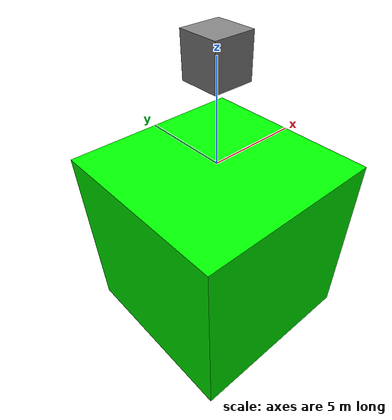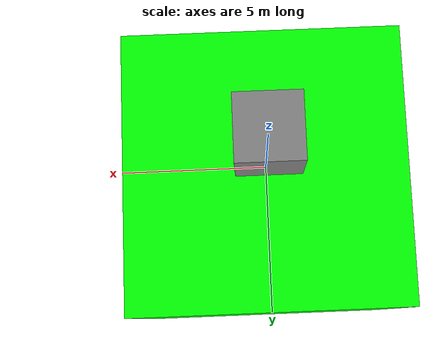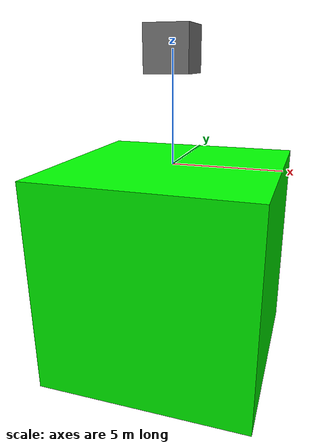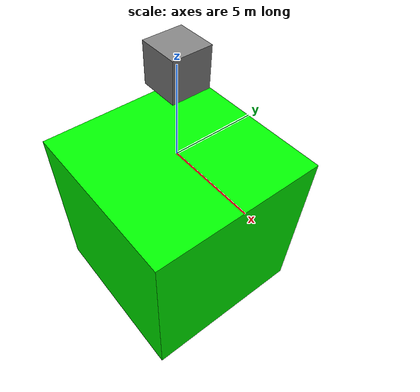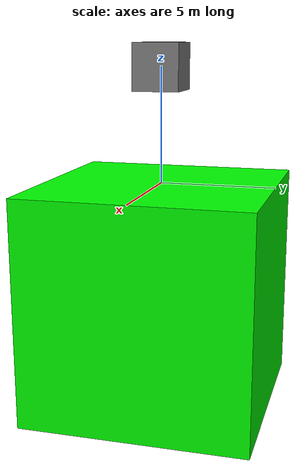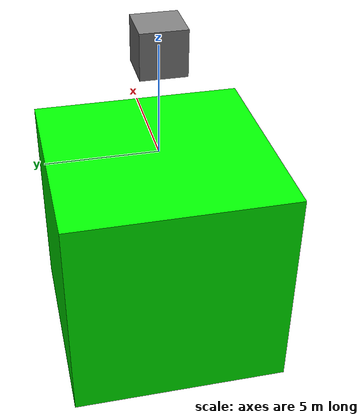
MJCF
<!-- Author: Jacob Meredith (jmer@udel.edu)-->

<!--Note that comments in .xml files are created in this format:-->	<!--YOUR COMMENT HERE-->

<?xml version="1.0" ?>
<mujoco>

    <option timestep="0.0001" />
    <!--option gravity="0 0 -9.81"/-->

    <worldbody>
    	<!--Creates a "box" that is placed at initial position pos="x y z". The slide joints outlined below allow the
    	box to move in the x, y, and z directions when force is applied to the object-->

        <body name="block" pos="0 0 5">

            <geom name = "block" condim="1" size="1 1 1" type="box"/>
            <inertial pos="0 0 0" mass= "100" diaginertia='0.001666666 0.001666666 0.001666666'/>
            <joint name="freefall" type="free" stiffness="0" damping="0" frictionloss="0" armature="0"/>

        </body>

        <!--Creates the "floor" object at pos="x y z". The floor should be stationary, therefore no joints were added.-->
        <body name="floor" pos="0 0 -5">
            <!--solref="-stiffness -damping" is what gives the floor a bouncy property. Both of these
            quantites can be tweaked but must remain negative or 0 for the program to run properly-->

            <geom name = "floor" condim="3" size="5 5 5" rgba="0 1 0 1" type="box"/>

        </body>

    </worldbody>

    <!--Attempting to add an additional downward force to the block at its center of gravity (NOT WORKING CURRENTLY)-->
    <actuator>
		<motor name="block:joint" joint="freefall" gear="10 10 10 10 10 10"/>
    </actuator>

    <contact>
	<pair geom1="floor" geom2="block" solref="-100 0"/> <!--solimp=".9 .99 .003"-->
    </contact>

</mujoco>
